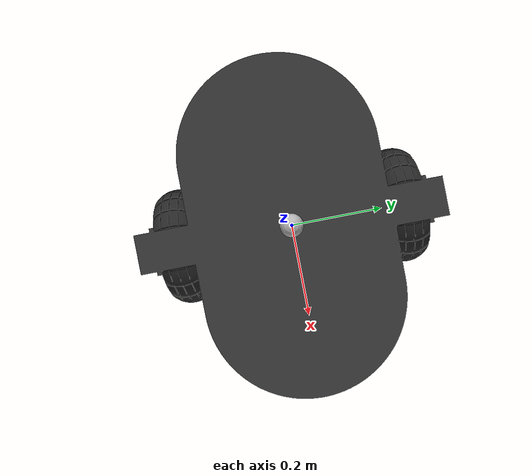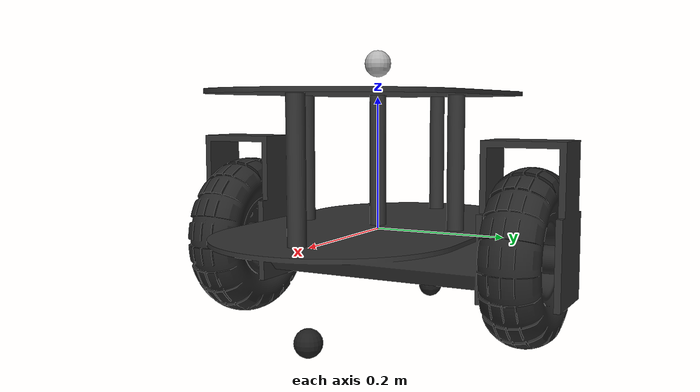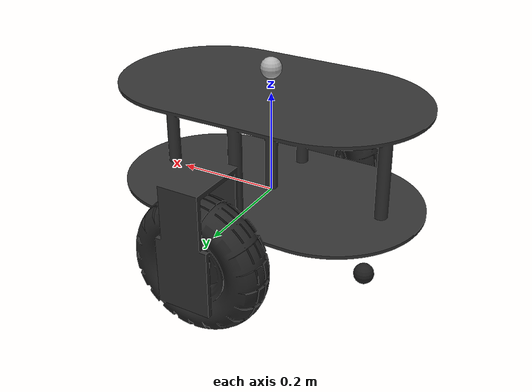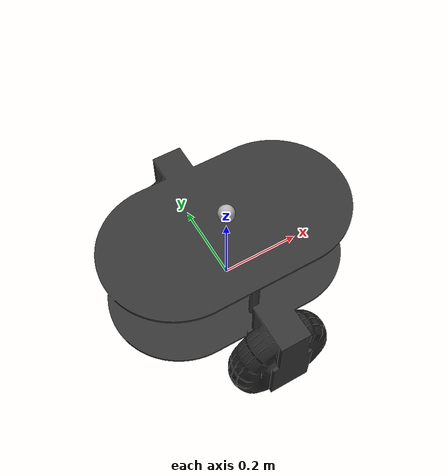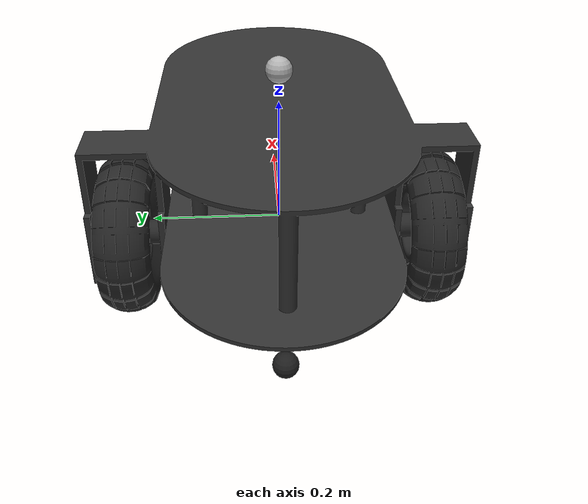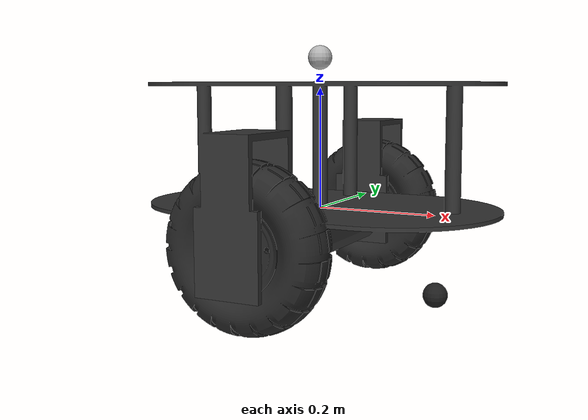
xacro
<?xml version="1.0"?>
<robot name="toaster" xmlns:xacro="http://www.ros.org/wiki/xacro">
    <xacro:property name="PI" value="3.1415926535897932" />
    <xacro:property name="wheelbase" value="0.550" />

    <xacro:property name="wheel_radius" value="0.125" />
    <xacro:property name="wheel_width" value="0.100" />
    <xacro:property name="wheel_vertical_offset" value="-0.0254" />

    <xacro:property name="dummy_inertia" value="1e-09"/>

    <material name="dark_grey"><color rgba="0.2 0.2 0.2 1.0" /></material>
    <material name="light_grey"><color rgba="0.4 0.4 0.4 1.0" /></material>
    <material name="black"><color rgba="0.15 0.15 0.15 1.0" /></material>
    <xacro:macro name="wheel" params="prefix *joint_pose">
        <link name="${prefix}_wheel_link">
            <visual>
                <origin xyz="0 0 0" rpy="${PI/2} 0 0"/>
                <geometry>
                    <mesh filename="package://toaster-description/meshes/toaster-wheel.stl" scale="0.001 0.001 0.001"/>
                </geometry>
                <material name="black" />
            </visual>
            <collision>
                <origin xyz="0 0 0" rpy="${PI/2} 0 0"/>
                <geometry>
                <cylinder radius="${wheel_radius}" length="${wheel_width}"/>
                </geometry>
            </collision>
            <inertial>
                <origin xyz="0 0 0" rpy="0 0 0"/>
                <mass value="0.477"/>
                <inertia
                ixx="0.0013" ixy="0" ixz="0"
                iyy="0.0024" iyz="0"
                izz="0.0013"/>
            </inertial>
        </link>

        <gazebo reference="${prefix}_wheel_link">
            <material>Gazebo/Black</material>
            <selfCollide>false</selfCollide>
            <mu1 value="0.5"/>
            <mu2 value="0.5"/>
            <kp value="10000000.0" />
            <kd value="1" />
            <fdir1 value="1 0 0"/>
        </gazebo>

        <joint name="${prefix}_wheel" type="continuous">
            <parent link="chassis_link"/>
            <child link="${prefix}_wheel_link" />
            <xacro:insert_block name="joint_pose" />
            <axis xyz="0 1 0" />
        </joint>

        <transmission name="${prefix}_wheel_trans">
        <type>transmission_interface/SimpleTransmission</type>
            <joint name="${prefix}_wheel">
                <hardwareInterface>hardware_interface/VelocityJointInterface</hardwareInterface>
            </joint>
            <actuator name="${prefix}_actuator">
                <mechanicalReduction>1</mechanicalReduction>
            </actuator>
        </transmission>
    </xacro:macro>

    <xacro:wheel prefix="left">
        <origin xyz="0 0.24 ${wheel_vertical_offset}" rpy="0 0 0" />
    </xacro:wheel>

    <xacro:wheel prefix="right">
        <origin xyz="0 -0.24 ${wheel_vertical_offset}" rpy="0 0 0" />
    </xacro:wheel>

    <link name="base_link"></link>

    <joint name="base_link_joint" type="fixed">
        <origin xyz="0 0 0" rpy="0 0 0" />
        <parent link="base_link"/>
        <child link="chassis_link" />
    </joint>

    <link name="imu_link">
        <inertial>
        <mass value="0.001"/>

        <inertia ixx="${dummy_inertia}" ixy="0.0" ixz="0.0" iyy="${dummy_inertia}" iyz="0.0" izz="${dummy_inertia}"/>
        </inertial>
    </link>
    <joint name="imu_joint" type="fixed">
        <parent link="chassis_link" />
        <child link="imu_link" />
    </joint>

    <link name="chassis_link">
        <visual>
        <origin xyz="0 0 0" rpy="0 0 0"/>
        <geometry>
            <mesh filename="package://toaster-description/meshes/toaster-chassis.stl" scale="0.001 0.001 0.001"/>
        </geometry>
            <material name="dark_grey" />
        </visual>
        <collision>
            <origin xyz="0 0 0" rpy="0 0 0"/>
            <geometry>
                <mesh filename="package://toaster-description/meshes/toaster-chassis.stl" scale="0.001 0.001 0.001"/>
            </geometry>
        </collision>
        <inertial>
        <!-- Center of mass -->
        <origin xyz="0.012  0.002 0.067" rpy="0 0 0"/>
        <mass value="16.523"/>
        <!-- Moments of inertia: ( chassis without wheels ) -->
        <inertia
            ixx="0.3136" ixy="-0.0008" ixz="0.0164"
            iyy="0.3922" iyz="-0.0009"
            izz="0.4485"/>
        </inertial>
    </link>
    <!--Caster front  -->
  <link name="caster_front_link">
    <visual>
      <origin rpy="1.57079632679 0 0" xyz="0 0 0"/>
      <geometry>
        <sphere radius="0.02"/>
      </geometry>
      <material name="Black"/>
    </visual>
    <collision>
      <geometry>
        <sphere radius="0.02"/>
      </geometry>
      <origin rpy="1.57079632679 0 0" xyz="0 0 0"/>
    </collision>
    <inertial>
      <mass value="0.5"/>
      <origin xyz="0 0 0"/>
      <inertia ixx="0.001" ixy="0.0" ixz="0.0" iyy="0.001" iyz="0.0" izz="0.001"/>
    </inertial>
  </link>
  <joint name="caster_front_joint" type="fixed">
    <parent link="base_link"/>
    <child link="caster_front_link"/>
    <origin rpy="-1.57079632679 0 0" xyz="0.2032 0.0 -0.128"/>
  </joint>

  <!--Caster back  -->
    <link name="caster_back_link">
        <visual>
        <origin rpy="1.57079632679 0 0" xyz="0.0 0.0 0 "/>
        <geometry>
            <sphere radius="0.02"/>
        </geometry>
        <material name="Black"/>
        </visual>
        <collision>
        <geometry>
            <sphere radius="0.02"/>
        </geometry>
        <origin rpy="1.57079632679 0 0" xyz="0 0.0 0 "/>
        </collision>
        <inertial>
        <mass value="0.5"/>
        <origin xyz="0 0 0"/>
        <inertia ixx="0.001" ixy="0.0" ixz="0.0" iyy="0.001" iyz="0.0" izz="0.001"/>
        </inertial>
    </link>
    <joint name="caster_back_joint" type="fixed">
        <parent link="base_link"/>
        <child link="caster_back_link"/>
        <origin rpy="-1.57079632679 0 0" xyz="-0.2032 0.0 -.127"/>
    </joint>
    <!-- Laser -->
    <joint name="laser_joint" type="fixed">
        <axis xyz="0 1 0" />
        <origin xyz="0 0 0.25" rpy="0 0 0"/>
        <parent link="base_link"/>
        <child link="laser_link"/>
  </joint>

    <link name="laser_link">
        <collision>
            <origin xyz="0 0 0" rpy="0 0 0"/>
            <geometry>
                <box size="0.1 0.1 0.1"/>
            </geometry>
        </collision>

        <visual>
            <origin xyz="0 0 0" rpy="0 0 0"/>
                <geometry>
                    <sphere radius="0.02"/>
                </geometry>
        </visual>

        <inertial>
            <mass value="1e-5" />
            <origin xyz="0 0 0" rpy="0 0 0"/>
            <inertia ixx="1e-6" ixy="0" ixz="0" iyy="1e-6" iyz="0" izz="1e-6" />
        </inertial>
  </link>

      <!-- Bring in simulation data for Gazebo. -->
    <xacro:include filename="$(find toaster-description)/urdf/toaster.gazebo" />

</robot>
